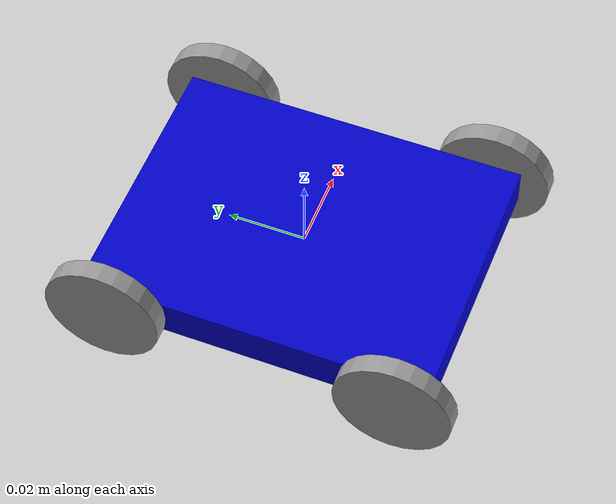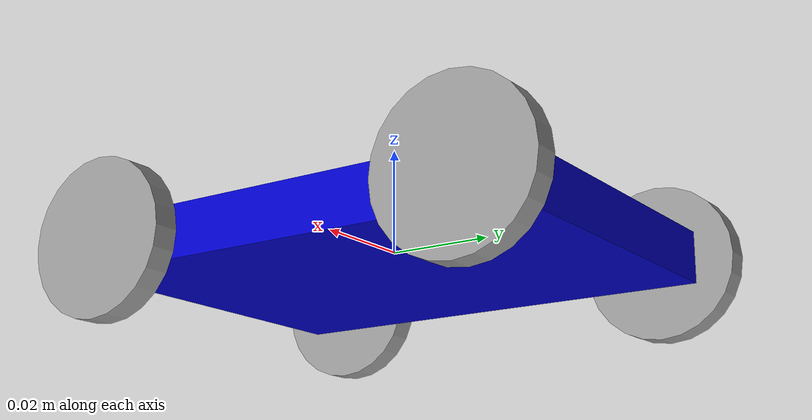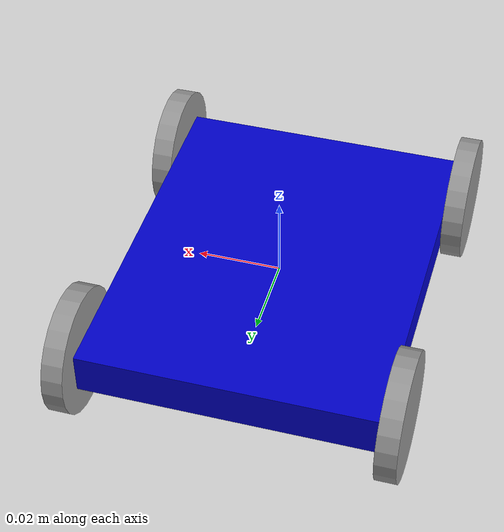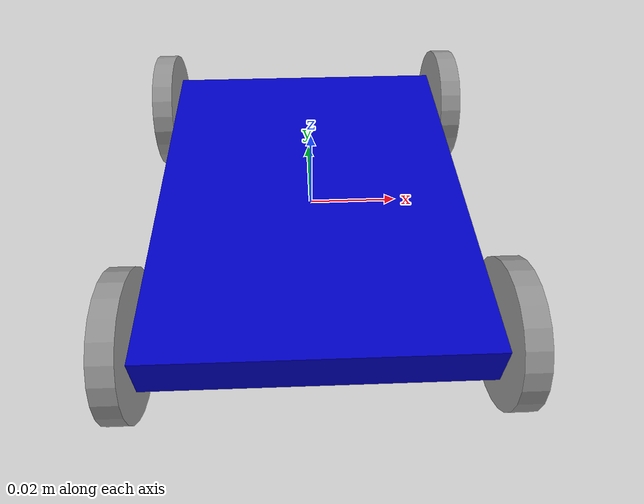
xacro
<?xml version="1.0"?>
<robot name="myrobot2" xmlns:xacro="http://www.ros.org/wiki/xacro">

   <material name="blue">
     <color rgba="0 0 0.8 1"/>
   </material>
   <material name="white">
     <color rgba="1 1 1 1"/>
   </material>
   <material name = "black">
     <color rgba = "0 0 0 1"/>
   </material>

   <link name="link_chassis">
    <pose>0 0 0.1 0 0 0</pose>
    <visual name = "chassis_visual">
      <origin rpy="0 0 0" xyz="0 0 0"/>
      <geometry>
        <box size = "0.07 0.09 0.01"/>
      </geometry>
      <material name = "blue"/>
    </visual>

    <collision name = "chassis_collision">
	<origin rpy = "0 0 0" xyz = "0 0 0"/>
        <geometry>
          <box size = "0.07 0.09 0.01"/>
        </geometry>
    </collision>

    <inertial>
      <mass value="0.5"/>
      <inertia ixx="0.05" ixy="0" ixz="0" iyy="0.03087" iyz="0" izz="0.0181"/>
    </inertial>
   </link>

   <gazebo reference='link_chassis'>
     <material>Gazebo/Blue</material>
   </gazebo>

   <!-- fornt_right_wheel-->
   <link name = "front_right_wheel">
     <inertial>
       <mass value = "0.2"/>
       <inertia ixx="1.17e-06" ixy="0" ixz="0" iyy="1.17e-06" iyz="0" izz="2.25e-06"/>
      </inertial>

     <visual name = "front_right_wheel_visual">
       <origin rpy = "0 1.5707 0" xyz = "0 0 0"/>
       <geometry>
          <cylinder length="0.005" radius="0.015"/>
       </geometry>
     </visual>

     <collision name = "front_right_wheel_collision">
	<origin rpy = "0 1.5707 0" xyz = "0 0 0"/>
	<geometry>
	   <cylinder length="0.005" radius="0.015"/>
	</geometry>
     </collision>

     <material name = "white"/>
    </link>

   <joint name="joint_front_right_wheel" type="continuous">
     <origin rpy="0 0 0" xyz="0.0375 -0.0375 0.0"/>
     <parent link="link_chassis"/>
     <child link="front_right_wheel"/>
     <axis rpy="0 0 0" xyz="1 0 0"/>
     <limit effort="50" velocity="1"/>
     <joint_properties damping="5.0" friction="5.0"/>
   </joint>

   <gazebo reference="front_right_wheel">
      <mu1 value="200.0"/>
      <mu2 value="100.0"/>
      <kp value="10000000.0" />
      <kd value="1.0" />
      <material>Gazebo/Grey</material>
   </gazebo>

   <transmission name="trans_front_right_wheel">
      <type>transmission_interface/SimpleTransmission</type>
      <actuator name="front_right_wheel_motor">
	<hardwareInterface>VelocityJointInterface</hardwareInterface>
        <mechanicalReduction>7</mechanicalReduction>
      </actuator>
      <joint name="joint_front_right_wheel">
        <hardwareInterface>VelocityJointInterface</hardwareInterface>
      </joint>
    </transmission>

   <!-- front_left_wheel"-->
   <link name = "front_left_wheel">
     <visual>
       <origin rpy="0 1.5707 0" xyz="0 0 0"/>
       <geometry>
          <cylinder length="0.005" radius="0.015"/>
       </geometry>
     </visual>

     <collision name = "front_left_wheel_collision">
       <origin rpy="0 1.5707 0" xyz="0 0 0"/>
       <geometry>
          <cylinder length="0.005" radius="0.015"/>
       </geometry>
     </collision>

     <inertial>
       <mass value="0.2"/>
       <inertia ixx="1.17e-06" ixy="0" ixz="0" iyy="1.17e-06" iyz="0" izz="2.25e-06"/>
     </inertial>
     <material name = "white"/>
   </link>

   <joint name="joint_front_left_wheel" type="continuous">
     <origin rpy="0 0 0" xyz="0.0375 0.0375 0.0"/>
     <child link="front_left_wheel"/>
     <parent link="link_chassis"/>
     <axis rpy="0 0 0" xyz="1 0 0"/>
     <limit effort="50" velocity="1"/>
     <joint_properties damping="5.0" friction="5.0"/>
   </joint>

   <gazebo reference="front_left_wheel">
      <mu1 value="200.0"/>
      <mu2 value="100.0"/>
      <kp value="10000000.0" />
      <kd value="1.0" />
      <material>Gazebo/Grey</material>
   </gazebo>

   <transmission name="trans_front_left_wheel">
      <type>transmission_interface/SimpleTransmission</type>
      <actuator name="front_left_wheel_motor">
	<hardwareInterface>VelocityJointInterface</hardwareInterface>
        <mechanicalReduction>7</mechanicalReduction>
      </actuator>
      <joint name="joint_front_left_wheel">
        <hardwareInterface>VelocityJointInterface</hardwareInterface>
      </joint>
    </transmission>

   <!-- back_right_wheel"-->
   <link name = "back_right_wheel">
     <visual>
       <origin rpy="0 1.5707 0" xyz="0 0 0"/>
       <geometry>
          <cylinder length="0.005" radius="0.015"/>
       </geometry>
     </visual>

     <collision>
	<origin rpy="0 1.5707 0" xyz="0 0 0"/>
        <geometry>
          <cylinder length="0.005" radius="0.015"/>
        </geometry>
     </collision>

     <inertial>
       <mass value="0.2"/>
       <inertia ixx="1.17e-06" ixy="0" ixz="0" iyy="1.17e-06" iyz="0" izz="2.25e-06"/>
     </inertial>
     <material name = "black"/>
   </link>

   <joint name="joint_back_right_wheel" type="continuous">
     <origin rpy="0 0 0" xyz="-0.0375 -0.0375 0"/>
     <child link="back_right_wheel"/>
     <parent link="link_chassis"/>
     <axis rpy="0 0 0" xyz="1 0 0"/>
     <limit effort="50" velocity="1"/>
     <joint_properties damping="5.0" friction="5.0"/>
   </joint>

   <gazebo reference="back_right_wheel">
      <mu1 value="200.0"/>
      <mu2 value="100.0"/>
      <kp value="10000000.0" />
      <kd value="1.0" />
      <material>Gazebo/Grey</material>
   </gazebo>

   <transmission name="trans_back_right_wheel">
      <type>transmission_interface/SimpleTransmission</type>
      <actuator name="back_right_wheel_motor">
        <mechanicalReduction>7</mechanicalReduction>
	<hardwareInterface>VelocityJointInterface</hardwareInterface>
      </actuator>
      <joint name="joint_back_right_wheel">
        <hardwareInterface>VelocityJointInterface</hardwareInterface>
      </joint>
    </transmission>

   <!-- back_left_wheel-->
   <link name = "back_left_wheel">
     <visual>
       <origin rpy="0 1.5707 0" xyz="0 0 0"/>
       <geometry>
          <cylinder length="0.005" radius="0.015"/>
       </geometry>
     </visual>

     <collision anme = "back_left_wheel_collision">
	<origin rpy="0 1.5707 0" xyz="0 0 0"/>
        <geometry>
          <cylinder length="0.005" radius="0.015"/>
        </geometry>
     </collision>

     <inertial>
       <mass value="0.2"/>
       <inertia ixx="1.17e-06" ixy="0" ixz="0" iyy="1.17e-06" iyz="0" izz="2.25e-06"/>
     </inertial>
     <material name = "black"/>
   </link>

   <joint name="joint_back_left_wheel" type="continuous">
     <origin rpy="0 0 0" xyz="-0.0375 0.0375 0"/>
     <child link="back_left_wheel"/>
     <parent link="link_chassis"/>
     <axis rpy="0 0 0" xyz="1 0 0"/>
     <limit effort="50" velocity="1"/>
     <joint_properties damping="5.0" friction="5.0"/>
   </joint>

   <gazebo reference="back_left_wheel">
      <mu1 value="200.0"/>
      <mu2 value="100.0"/>
      <kp value="10000000.0" />
      <kd value="1.0" />
      <material>Gazebo/Grey</material>
   </gazebo>

   <transmission name="trans_back_left_wheel">
      <type>transmission_interface/SimpleTransmission</type>
      <actuator name="back_left_wheel_motor">
        <mechanicalReduction>7</mechanicalReduction>
	<hardwareInterface>VelocityJointInterface</hardwareInterface>
      </actuator>
      <joint name="joint_back_left_wheel">
        <hardwareInterface>VelocityJointInterface</hardwareInterface>
      </joint>
    </transmission>

   <gazebo>
     <plugin name="skid_steer_drive_controller" filename="libgazebo_ros_skid_steer_drive.so">
	<updateRate>20</updateRate>
        <robotNamespace>/</robotNamespace>
        <alwaysOn>true</alwaysOn>
	<leftFrontJoint>joint_front_left_wheel</leftFrontJoint>
	<rightFrontJoint>joint_front_right_wheel</rightFrontJoint>
	<leftRearJoint>joint_back_left_wheel</leftRearJoint>
	<rightRearJoint>joint_back_right_wheel</rightRearJoint>
	<commandTopic>cmd_vel</commandTopic>
	<robotBaseFrame>link_chassis</robotBaseFrame>
	<odometryTopic>odom</odometryTopic>
	<odometryFrame>odom</odometryFrame>
	<topicName>cmd_vel</topicName>
	<wheelSeparation>1</wheelSeparation>
	<wheelDiameter>0.03</wheelDiameter>
	<torque>20</torque>
	<broadcastTF>1</broadcastTF>
	<covariance_x>0</covariance_x>
	<covariance_y>0</covariance_y>
    	<covariance_yaw>0</covariance_yaw>
     </plugin>
   </gazebo>

</robot>
